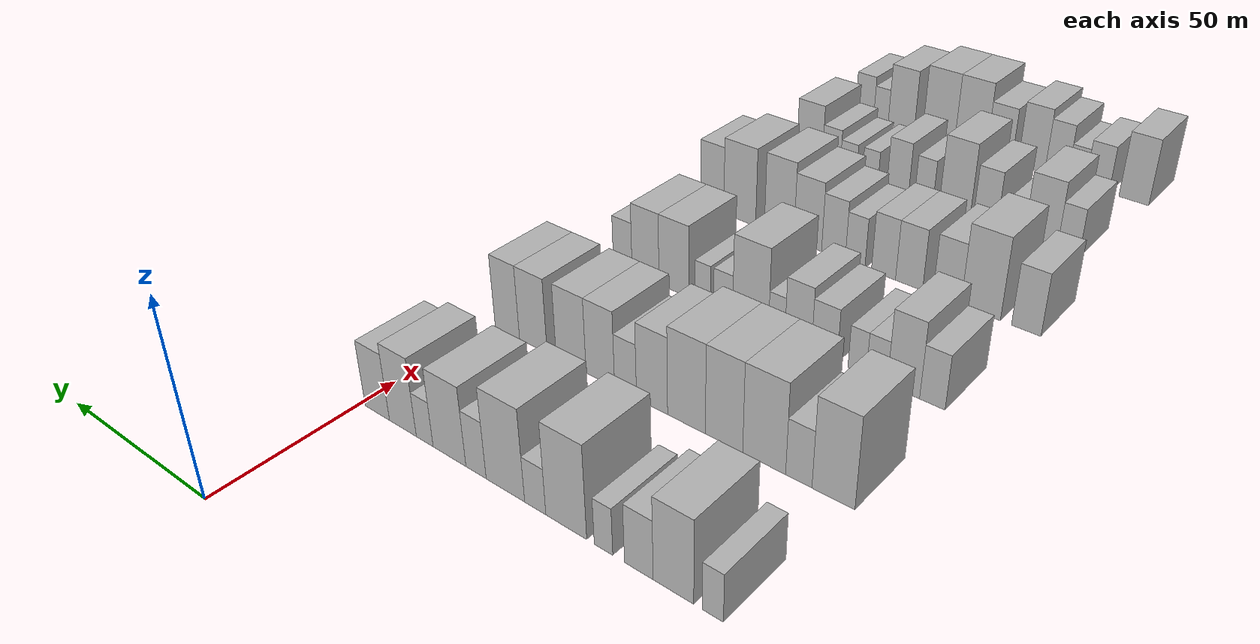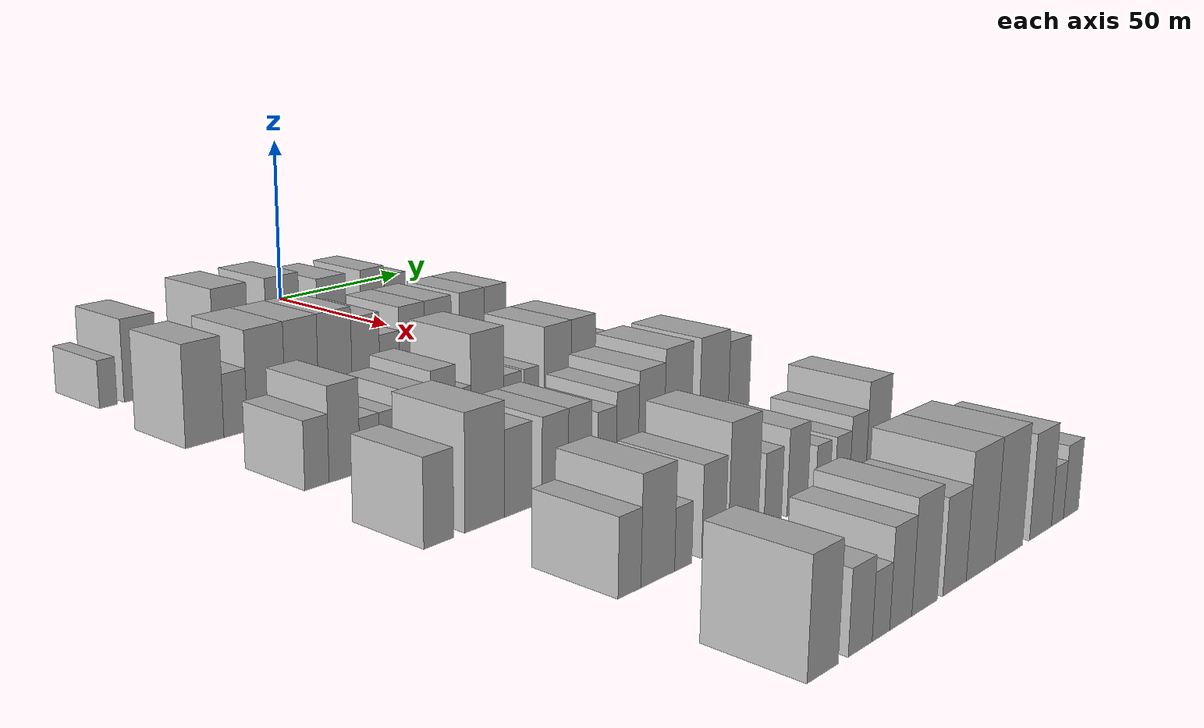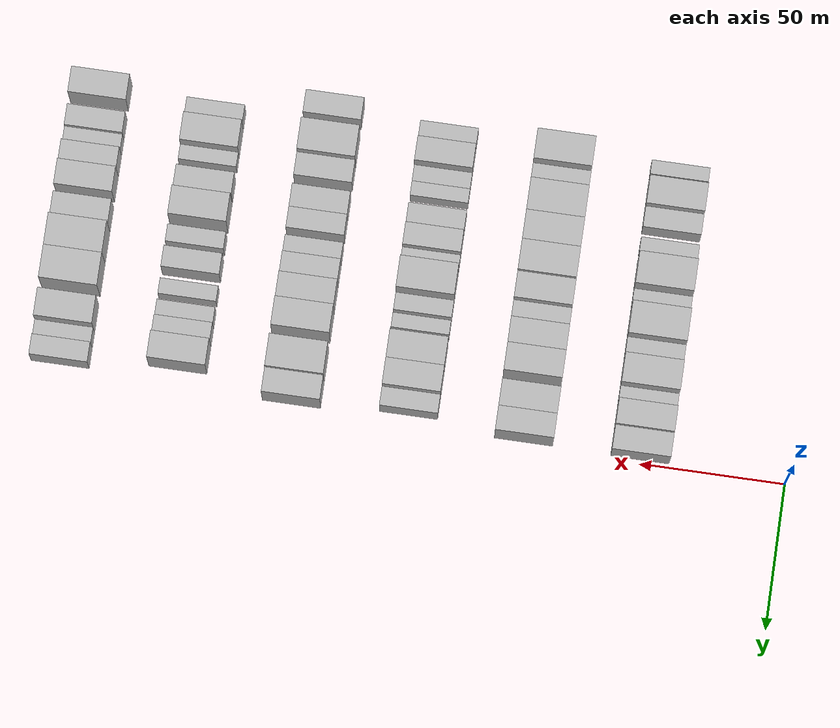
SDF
<sdf version="1.6">
 <world name="default">
  <model name="building_58">
   <static>1</static>
   <pose>50.0000 -100.2945 0 0.000000 0.000000 0.000000</pose>
   <link name="link">
    <pose>0 0 6.00 0 0 0</pose>
    <collision name="collision"><geometry><box><size>20.0000 4.9041 12.0000</size></box></geometry></collision>
    <visual name="visual">
     <cast_shadows>0</cast_shadows>
     <geometry><box><size>20.0000 4.9041 12.0000</size></box></geometry>
     <material>
      <script>
       <uri>model://HANNAS_wall/materials/scripts</uri>
       <uri>model://HANNAS_wall/materials/textures</uri>
       <name>vrc/HANNAS_wall</name>
      </script>
     </material>
    </visual>
   </link>
  </model>
  <model name="building_59">
   <static>1</static>
   <pose>50.0000 -90.9520 0 0.000000 0.000000 0.000000</pose>
   <link name="link">
    <pose>0 0 10.50 0 0 0</pose>
    <collision name="collision"><geometry><box><size>20.0000 9.7809 21.0000</size></box></geometry></collision>
    <visual name="visual">
     <cast_shadows>0</cast_shadows>
     <geometry><box><size>20.0000 9.7809 21.0000</size></box></geometry>
     <material>
      <script>
       <uri>model://HANNAS_wall/materials/scripts</uri>
       <uri>model://HANNAS_wall/materials/textures</uri>
       <name>vrc/HANNAS_wall</name>
      </script>
     </material>
    </visual>
   </link>
  </model>
  <model name="building_60">
   <static>1</static>
   <pose>50.0000 -82.4660 0 0.000000 0.000000 0.000000</pose>
   <link name="link">
    <pose>0 0 7.50 0 0 0</pose>
    <collision name="collision"><geometry><box><size>20.0000 7.1911 15.0000</size></box></geometry></collision>
    <visual name="visual">
     <cast_shadows>0</cast_shadows>
     <geometry><box><size>20.0000 7.1911 15.0000</size></box></geometry>
     <material>
      <script>
       <uri>model://HANNAS_wall/materials/scripts</uri>
       <uri>model://HANNAS_wall/materials/textures</uri>
       <name>vrc/HANNAS_wall</name>
      </script>
     </material>
    </visual>
   </link>
  </model>
  <model name="building_61">
   <static>1</static>
   <pose>50.0000 -73.4531 0 0.000000 0.000000 0.000000</pose>
   <link name="link">
    <pose>0 0 6.00 0 0 0</pose>
    <collision name="collision"><geometry><box><size>20.0000 4.8346 12.0000</size></box></geometry></collision>
    <visual name="visual">
     <cast_shadows>0</cast_shadows>
     <geometry><box><size>20.0000 4.8346 12.0000</size></box></geometry>
     <material>
      <script>
       <uri>model://HANNAS_wall/materials/scripts</uri>
       <uri>model://HANNAS_wall/materials/textures</uri>
       <name>vrc/HANNAS_wall</name>
      </script>
     </material>
    </visual>
   </link>
  </model>
  <model name="building_62">
   <static>1</static>
   <pose>50.0000 -63.4703 0 0.000000 0.000000 0.000000</pose>
   <link name="link">
    <pose>0 0 12.00 0 0 0</pose>
    <collision name="collision"><geometry><box><size>20.0000 11.1311 24.0000</size></box></geometry></collision>
    <visual name="visual">
     <cast_shadows>0</cast_shadows>
     <geometry><box><size>20.0000 11.1311 24.0000</size></box></geometry>
     <material>
      <script>
       <uri>model://HANNAS_wall/materials/scripts</uri>
       <uri>model://HANNAS_wall/materials/textures</uri>
       <name>vrc/HANNAS_wall</name>
      </script>
     </material>
    </visual>
   </link>
  </model>
  <model name="building_63">
   <static>1</static>
   <pose>50.0000 -54.9149 0 0.000000 0.000000 0.000000</pose>
   <link name="link">
    <pose>0 0 6.00 0 0 0</pose>
    <collision name="collision"><geometry><box><size>20.0000 5.9796 12.0000</size></box></geometry></collision>
    <visual name="visual">
     <cast_shadows>0</cast_shadows>
     <geometry><box><size>20.0000 5.9796 12.0000</size></box></geometry>
     <material>
      <script>
       <uri>model://HANNAS_wall/materials/scripts</uri>
       <uri>model://HANNAS_wall/materials/textures</uri>
       <name>vrc/HANNAS_wall</name>
      </script>
     </material>
    </visual>
   </link>
  </model>
  <model name="building_64">
   <static>1</static>
   <pose>50.0000 -46.3006 0 0.000000 0.000000 0.000000</pose>
   <link name="link">
    <pose>0 0 12.00 0 0 0</pose>
    <collision name="collision"><geometry><box><size>20.0000 11.2490 24.0000</size></box></geometry></collision>
    <visual name="visual">
     <cast_shadows>0</cast_shadows>
     <geometry><box><size>20.0000 11.2490 24.0000</size></box></geometry>
     <material>
      <script>
       <uri>model://HANNAS_wall/materials/scripts</uri>
       <uri>model://HANNAS_wall/materials/textures</uri>
       <name>vrc/HANNAS_wall</name>
      </script>
     </material>
    </visual>
   </link>
  </model>
  <model name="building_65">
   <static>1</static>
   <pose>50.0000 -37.6016 0 0.000000 0.000000 0.000000</pose>
   <link name="link">
    <pose>0 0 7.50 0 0 0</pose>
    <collision name="collision"><geometry><box><size>20.0000 6.1490 15.0000</size></box></geometry></collision>
    <visual name="visual">
     <cast_shadows>0</cast_shadows>
     <geometry><box><size>20.0000 6.1490 15.0000</size></box></geometry>
     <material>
      <script>
       <uri>model://HANNAS_wall/materials/scripts</uri>
       <uri>model://HANNAS_wall/materials/textures</uri>
       <name>vrc/HANNAS_wall</name>
      </script>
     </material>
    </visual>
   </link>
  </model>
  <model name="building_66">
   <static>1</static>
   <pose>50.0000 -29.3880 0 0.000000 0.000000 0.000000</pose>
   <link name="link">
    <pose>0 0 10.50 0 0 0</pose>
    <collision name="collision"><geometry><box><size>20.0000 10.2781 21.0000</size></box></geometry></collision>
    <visual name="visual">
     <cast_shadows>0</cast_shadows>
     <geometry><box><size>20.0000 10.2781 21.0000</size></box></geometry>
     <material>
      <script>
       <uri>model://HANNAS_wall/materials/scripts</uri>
       <uri>model://HANNAS_wall/materials/textures</uri>
       <name>vrc/HANNAS_wall</name>
      </script>
     </material>
    </visual>
   </link>
  </model>
  <model name="building_67">
   <static>1</static>
   <pose>50.0000 -21.5326 0 0.000000 0.000000 0.000000</pose>
   <link name="link">
    <pose>0 0 6.00 0 0 0</pose>
    <collision name="collision"><geometry><box><size>20.0000 5.4326 12.0000</size></box></geometry></collision>
    <visual name="visual">
     <cast_shadows>0</cast_shadows>
     <geometry><box><size>20.0000 5.4326 12.0000</size></box></geometry>
     <material>
      <script>
       <uri>model://HANNAS_wall/materials/scripts</uri>
       <uri>model://HANNAS_wall/materials/textures</uri>
       <name>vrc/HANNAS_wall</name>
      </script>
     </material>
    </visual>
   </link>
  </model>
  <model name="building_68">
   <static>1</static>
   <pose>50.0000 -14.3611 0 0.000000 0.000000 0.000000</pose>
   <link name="link">
    <pose>0 0 10.50 0 0 0</pose>
    <collision name="collision"><geometry><box><size>20.0000 8.9104 21.0000</size></box></geometry></collision>
    <visual name="visual">
     <cast_shadows>0</cast_shadows>
     <geometry><box><size>20.0000 8.9104 21.0000</size></box></geometry>
     <material>
      <script>
       <uri>model://HANNAS_wall/materials/scripts</uri>
       <uri>model://HANNAS_wall/materials/textures</uri>
       <name>vrc/HANNAS_wall</name>
      </script>
     </material>
    </visual>
   </link>
  </model>
  <model name="building_69">
   <static>1</static>
   <pose>50.0000 -5.7404 0 0.000000 0.000000 0.000000</pose>
   <link name="link">
    <pose>0 0 9.00 0 0 0</pose>
    <collision name="collision"><geometry><box><size>20.0000 8.3310 18.0000</size></box></geometry></collision>
    <visual name="visual">
     <cast_shadows>0</cast_shadows>
     <geometry><box><size>20.0000 8.3310 18.0000</size></box></geometry>
     <material>
      <script>
       <uri>model://HANNAS_wall/materials/scripts</uri>
       <uri>model://HANNAS_wall/materials/textures</uri>
       <name>vrc/HANNAS_wall</name>
      </script>
     </material>
    </visual>
   </link>
  </model>
  <model name="building_196">
   <static>1</static>
   <pose>90.0000 -100.6691 0 0.000000 0.000000 0.000000</pose>
   <link name="link">
    <pose>0 0 12.00 0 0 0</pose>
    <collision name="collision"><geometry><box><size>20.0000 10.4259 24.0000</size></box></geometry></collision>
    <visual name="visual">
     <cast_shadows>0</cast_shadows>
     <geometry><box><size>20.0000 10.4259 24.0000</size></box></geometry>
     <material>
      <script>
       <uri>model://HANNAS_wall/materials/scripts</uri>
       <uri>model://HANNAS_wall/materials/textures</uri>
       <name>vrc/HANNAS_wall</name>
      </script>
     </material>
    </visual>
   </link>
  </model>
  <model name="building_197">
   <static>1</static>
   <pose>90.0000 -92.1511 0 0.000000 0.000000 0.000000</pose>
   <link name="link">
    <pose>0 0 7.50 0 0 0</pose>
    <collision name="collision"><geometry><box><size>20.0000 6.6101 15.0000</size></box></geometry></collision>
    <visual name="visual">
     <cast_shadows>0</cast_shadows>
     <geometry><box><size>20.0000 6.6101 15.0000</size></box></geometry>
     <material>
      <script>
       <uri>model://HANNAS_wall/materials/scripts</uri>
       <uri>model://HANNAS_wall/materials/textures</uri>
       <name>vrc/HANNAS_wall</name>
      </script>
     </material>
    </visual>
   </link>
  </model>
  <model name="building_198">
   <static>1</static>
   <pose>90.0000 -83.2589 0 0.000000 0.000000 0.000000</pose>
   <link name="link">
    <pose>0 0 12.00 0 0 0</pose>
    <collision name="collision"><geometry><box><size>20.0000 11.1741 24.0000</size></box></geometry></collision>
    <visual name="visual">
     <cast_shadows>0</cast_shadows>
     <geometry><box><size>20.0000 11.1741 24.0000</size></box></geometry>
     <material>
      <script>
       <uri>model://HANNAS_wall/materials/scripts</uri>
       <uri>model://HANNAS_wall/materials/textures</uri>
       <name>vrc/HANNAS_wall</name>
      </script>
     </material>
    </visual>
   </link>
  </model>
  <model name="building_199">
   <static>1</static>
   <pose>90.0000 -72.6114 0 0.000000 0.000000 0.000000</pose>
   <link name="link">
    <pose>0 0 12.00 0 0 0</pose>
    <collision name="collision"><geometry><box><size>20.0000 10.1210 24.0000</size></box></geometry></collision>
    <visual name="visual">
     <cast_shadows>0</cast_shadows>
     <geometry><box><size>20.0000 10.1210 24.0000</size></box></geometry>
     <material>
      <script>
       <uri>model://HANNAS_wall/materials/scripts</uri>
       <uri>model://HANNAS_wall/materials/textures</uri>
       <name>vrc/HANNAS_wall</name>
      </script>
     </material>
    </visual>
   </link>
  </model>
  <model name="building_200">
   <static>1</static>
   <pose>90.0000 -62.2204 0 0.000000 0.000000 0.000000</pose>
   <link name="link">
    <pose>0 0 12.00 0 0 0</pose>
    <collision name="collision"><geometry><box><size>20.0000 10.6608 24.0000</size></box></geometry></collision>
    <visual name="visual">
     <cast_shadows>0</cast_shadows>
     <geometry><box><size>20.0000 10.6608 24.0000</size></box></geometry>
     <material>
      <script>
       <uri>model://HANNAS_wall/materials/scripts</uri>
       <uri>model://HANNAS_wall/materials/textures</uri>
       <name>vrc/HANNAS_wall</name>
      </script>
     </material>
    </visual>
   </link>
  </model>
  <model name="building_201">
   <static>1</static>
   <pose>90.0000 -52.3362 0 0.000000 0.000000 0.000000</pose>
   <link name="link">
    <pose>0 0 10.50 0 0 0</pose>
    <collision name="collision"><geometry><box><size>20.0000 9.1076 21.0000</size></box></geometry></collision>
    <visual name="visual">
     <cast_shadows>0</cast_shadows>
     <geometry><box><size>20.0000 9.1076 21.0000</size></box></geometry>
     <material>
      <script>
       <uri>model://HANNAS_wall/materials/scripts</uri>
       <uri>model://HANNAS_wall/materials/textures</uri>
       <name>vrc/HANNAS_wall</name>
      </script>
     </material>
    </visual>
   </link>
  </model>
  <model name="building_202">
   <static>1</static>
   <pose>90.0000 -44.4828 0 0.000000 0.000000 0.000000</pose>
   <link name="link">
    <pose>0 0 7.50 0 0 0</pose>
    <collision name="collision"><geometry><box><size>20.0000 6.5993 15.0000</size></box></geometry></collision>
    <visual name="visual">
     <cast_shadows>0</cast_shadows>
     <geometry><box><size>20.0000 6.5993 15.0000</size></box></geometry>
     <material>
      <script>
       <uri>model://HANNAS_wall/materials/scripts</uri>
       <uri>model://HANNAS_wall/materials/textures</uri>
       <name>vrc/HANNAS_wall</name>
      </script>
     </material>
    </visual>
   </link>
  </model>
  <model name="building_203">
   <static>1</static>
   <pose>90.0000 -36.7470 0 0.000000 0.000000 0.000000</pose>
   <link name="link">
    <pose>0 0 10.50 0 0 0</pose>
    <collision name="collision"><geometry><box><size>20.0000 8.8722 21.0000</size></box></geometry></collision>
    <visual name="visual">
     <cast_shadows>0</cast_shadows>
     <geometry><box><size>20.0000 8.8722 21.0000</size></box></geometry>
     <material>
      <script>
       <uri>model://HANNAS_wall/materials/scripts</uri>
       <uri>model://HANNAS_wall/materials/textures</uri>
       <name>vrc/HANNAS_wall</name>
      </script>
     </material>
    </visual>
   </link>
  </model>
  <model name="building_204">
   <static>1</static>
   <pose>90.0000 -27.5056 0 0.000000 0.000000 0.000000</pose>
   <link name="link">
    <pose>0 0 10.50 0 0 0</pose>
    <collision name="collision"><geometry><box><size>20.0000 9.6107 21.0000</size></box></geometry></collision>
    <visual name="visual">
     <cast_shadows>0</cast_shadows>
     <geometry><box><size>20.0000 9.6107 21.0000</size></box></geometry>
     <material>
      <script>
       <uri>model://HANNAS_wall/materials/scripts</uri>
       <uri>model://HANNAS_wall/materials/textures</uri>
       <name>vrc/HANNAS_wall</name>
      </script>
     </material>
    </visual>
   </link>
  </model>
  <model name="building_205">
   <static>1</static>
   <pose>90.0000 -15.0714 0 0.000000 0.000000 0.000000</pose>
   <link name="link">
    <pose>0 0 10.50 0 0 0</pose>
    <collision name="collision"><geometry><box><size>20.0000 9.2577 21.0000</size></box></geometry></collision>
    <visual name="visual">
     <cast_shadows>0</cast_shadows>
     <geometry><box><size>20.0000 9.2577 21.0000</size></box></geometry>
     <material>
      <script>
       <uri>model://HANNAS_wall/materials/scripts</uri>
       <uri>model://HANNAS_wall/materials/textures</uri>
       <name>vrc/HANNAS_wall</name>
      </script>
     </material>
    </visual>
   </link>
  </model>
  <model name="building_206">
   <static>1</static>
   <pose>90.0000 -6.2385 0 0.000000 0.000000 0.000000</pose>
   <link name="link">
    <pose>0 0 10.50 0 0 0</pose>
    <collision name="collision"><geometry><box><size>20.0000 8.4080 21.0000</size></box></geometry></collision>
    <visual name="visual">
     <cast_shadows>0</cast_shadows>
     <geometry><box><size>20.0000 8.4080 21.0000</size></box></geometry>
     <material>
      <script>
       <uri>model://HANNAS_wall/materials/scripts</uri>
       <uri>model://HANNAS_wall/materials/textures</uri>
       <name>vrc/HANNAS_wall</name>
      </script>
     </material>
    </visual>
   </link>
  </model>
  <model name="building_327">
   <static>1</static>
   <pose>130.0000 -101.3605 0 0.000000 0.000000 0.000000</pose>
   <link name="link">
    <pose>0 0 7.50 0 0 0</pose>
    <collision name="collision"><geometry><box><size>20.0000 6.5066 15.0000</size></box></geometry></collision>
    <visual name="visual">
     <cast_shadows>0</cast_shadows>
     <geometry><box><size>20.0000 6.5066 15.0000</size></box></geometry>
     <material>
      <script>
       <uri>model://HANNAS_wall/materials/scripts</uri>
       <uri>model://HANNAS_wall/materials/textures</uri>
       <name>vrc/HANNAS_wall</name>
      </script>
     </material>
    </visual>
   </link>
  </model>
  <model name="building_328">
   <static>1</static>
   <pose>130.0000 -93.8606 0 0.000000 0.000000 0.000000</pose>
   <link name="link">
    <pose>0 0 10.50 0 0 0</pose>
    <collision name="collision"><geometry><box><size>20.0000 8.4932 21.0000</size></box></geometry></collision>
    <visual name="visual">
     <cast_shadows>0</cast_shadows>
     <geometry><box><size>20.0000 8.4932 21.0000</size></box></geometry>
     <material>
      <script>
       <uri>model://HANNAS_wall/materials/scripts</uri>
       <uri>model://HANNAS_wall/materials/textures</uri>
       <name>vrc/HANNAS_wall</name>
      </script>
     </material>
    </visual>
   </link>
  </model>
  <model name="building_329">
   <static>1</static>
   <pose>130.0000 -86.8076 0 0.000000 0.000000 0.000000</pose>
   <link name="link">
    <pose>0 0 6.00 0 0 0</pose>
    <collision name="collision"><geometry><box><size>20.0000 5.6128 12.0000</size></box></geometry></collision>
    <visual name="visual">
     <cast_shadows>0</cast_shadows>
     <geometry><box><size>20.0000 5.6128 12.0000</size></box></geometry>
     <material>
      <script>
       <uri>model://HANNAS_wall/materials/scripts</uri>
       <uri>model://HANNAS_wall/materials/textures</uri>
       <name>vrc/HANNAS_wall</name>
      </script>
     </material>
    </visual>
   </link>
  </model>
  <model name="building_330">
   <static>1</static>
   <pose>130.0000 -81.4940 0 0.000000 0.000000 0.000000</pose>
   <link name="link">
    <pose>0 0 6.00 0 0 0</pose>
    <collision name="collision"><geometry><box><size>20.0000 5.0144 12.0000</size></box></geometry></collision>
    <visual name="visual">
     <cast_shadows>0</cast_shadows>
     <geometry><box><size>20.0000 5.0144 12.0000</size></box></geometry>
     <material>
      <script>
       <uri>model://HANNAS_wall/materials/scripts</uri>
       <uri>model://HANNAS_wall/materials/textures</uri>
       <name>vrc/HANNAS_wall</name>
      </script>
     </material>
    </visual>
   </link>
  </model>
  <model name="building_331">
   <static>1</static>
   <pose>130.0000 -72.3446 0 0.000000 0.000000 0.000000</pose>
   <link name="link">
    <pose>0 0 7.50 0 0 0</pose>
    <collision name="collision"><geometry><box><size>20.0000 7.2845 15.0000</size></box></geometry></collision>
    <visual name="visual">
     <cast_shadows>0</cast_shadows>
     <geometry><box><size>20.0000 7.2845 15.0000</size></box></geometry>
     <material>
      <script>
       <uri>model://HANNAS_wall/materials/scripts</uri>
       <uri>model://HANNAS_wall/materials/textures</uri>
       <name>vrc/HANNAS_wall</name>
      </script>
     </material>
    </visual>
   </link>
  </model>
  <model name="building_332">
   <static>1</static>
   <pose>130.0000 -64.8132 0 0.000000 0.000000 0.000000</pose>
   <link name="link">
    <pose>0 0 9.00 0 0 0</pose>
    <collision name="collision"><geometry><box><size>20.0000 7.7782 18.0000</size></box></geometry></collision>
    <visual name="visual">
     <cast_shadows>0</cast_shadows>
     <geometry><box><size>20.0000 7.7782 18.0000</size></box></geometry>
     <material>
      <script>
       <uri>model://HANNAS_wall/materials/scripts</uri>
       <uri>model://HANNAS_wall/materials/textures</uri>
       <name>vrc/HANNAS_wall</name>
      </script>
     </material>
    </visual>
   </link>
  </model>
  <model name="building_333">
   <static>1</static>
   <pose>130.0000 -58.4968 0 0.000000 0.000000 0.000000</pose>
   <link name="link">
    <pose>0 0 6.00 0 0 0</pose>
    <collision name="collision"><geometry><box><size>20.0000 4.8547 12.0000</size></box></geometry></collision>
    <visual name="visual">
     <cast_shadows>0</cast_shadows>
     <geometry><box><size>20.0000 4.8547 12.0000</size></box></geometry>
     <material>
      <script>
       <uri>model://HANNAS_wall/materials/scripts</uri>
       <uri>model://HANNAS_wall/materials/textures</uri>
       <name>vrc/HANNAS_wall</name>
      </script>
     </material>
    </visual>
   </link>
  </model>
  <model name="building_334">
   <static>1</static>
   <pose>130.0000 -50.6088 0 0.000000 0.000000 0.000000</pose>
   <link name="link">
    <pose>0 0 12.00 0 0 0</pose>
    <collision name="collision"><geometry><box><size>20.0000 10.9212 24.0000</size></box></geometry></collision>
    <visual name="visual">
     <cast_shadows>0</cast_shadows>
     <geometry><box><size>20.0000 10.9212 24.0000</size></box></geometry>
     <material>
      <script>
       <uri>model://HANNAS_wall/materials/scripts</uri>
       <uri>model://HANNAS_wall/materials/textures</uri>
       <name>vrc/HANNAS_wall</name>
      </script>
     </material>
    </visual>
   </link>
  </model>
  <model name="building_335">
   <static>1</static>
   <pose>130.0000 -42.1603 0 0.000000 0.000000 0.000000</pose>
   <link name="link">
    <pose>0 0 6.00 0 0 0</pose>
    <collision name="collision"><geometry><box><size>20.0000 5.9759 12.0000</size></box></geometry></collision>
    <visual name="visual">
     <cast_shadows>0</cast_shadows>
     <geometry><box><size>20.0000 5.9759 12.0000</size></box></geometry>
     <material>
      <script>
       <uri>model://HANNAS_wall/materials/scripts</uri>
       <uri>model://HANNAS_wall/materials/textures</uri>
       <name>vrc/HANNAS_wall</name>
      </script>
     </material>
    </visual>
   </link>
  </model>
  <model name="building_336">
   <static>1</static>
   <pose>130.0000 -35.6440 0 0.000000 0.000000 0.000000</pose>
   <link name="link">
    <pose>0 0 6.00 0 0 0</pose>
    <collision name="collision"><geometry><box><size>20.0000 5.0566 12.0000</size></box></geometry></collision>
    <visual name="visual">
     <cast_shadows>0</cast_shadows>
     <geometry><box><size>20.0000 5.0566 12.0000</size></box></geometry>
     <material>
      <script>
       <uri>model://HANNAS_wall/materials/scripts</uri>
       <uri>model://HANNAS_wall/materials/textures</uri>
       <name>vrc/HANNAS_wall</name>
      </script>
     </material>
    </visual>
   </link>
  </model>
  <model name="building_337">
   <static>1</static>
   <pose>130.0000 -26.2143 0 0.000000 0.000000 0.000000</pose>
   <link name="link">
    <pose>0 0 10.50 0 0 0</pose>
    <collision name="collision"><geometry><box><size>20.0000 9.8029 21.0000</size></box></geometry></collision>
    <visual name="visual">
     <cast_shadows>0</cast_shadows>
     <geometry><box><size>20.0000 9.8029 21.0000</size></box></geometry>
     <material>
      <script>
       <uri>model://HANNAS_wall/materials/scripts</uri>
       <uri>model://HANNAS_wall/materials/textures</uri>
       <name>vrc/HANNAS_wall</name>
      </script>
     </material>
    </visual>
   </link>
  </model>
  <model name="building_338">
   <static>1</static>
   <pose>130.0000 -16.7112 0 0.000000 0.000000 0.000000</pose>
   <link name="link">
    <pose>0 0 10.50 0 0 0</pose>
    <collision name="collision"><geometry><box><size>20.0000 9.2034 21.0000</size></box></geometry></collision>
    <visual name="visual">
     <cast_shadows>0</cast_shadows>
     <geometry><box><size>20.0000 9.2034 21.0000</size></box></geometry>
     <material>
      <script>
       <uri>model://HANNAS_wall/materials/scripts</uri>
       <uri>model://HANNAS_wall/materials/textures</uri>
       <name>vrc/HANNAS_wall</name>
      </script>
     </material>
    </visual>
   </link>
  </model>
  <model name="building_339">
   <static>1</static>
   <pose>130.0000 -8.8415 0 0.000000 0.000000 0.000000</pose>
   <link name="link">
    <pose>0 0 7.50 0 0 0</pose>
    <collision name="collision"><geometry><box><size>20.0000 6.5360 15.0000</size></box></geometry></collision>
    <visual name="visual">
     <cast_shadows>0</cast_shadows>
     <geometry><box><size>20.0000 6.5360 15.0000</size></box></geometry>
     <material>
      <script>
       <uri>model://HANNAS_wall/materials/scripts</uri>
       <uri>model://HANNAS_wall/materials/textures</uri>
       <name>vrc/HANNAS_wall</name>
      </script>
     </material>
    </visual>
   </link>
  </model>
  <model name="building_472">
   <static>1</static>
   <pose>170.0000 -105.1812 0 0.000000 0.000000 0.000000</pose>
   <link name="link">
    <pose>0 0 9.00 0 0 0</pose>
    <collision name="collision"><geometry><box><size>20.0000 7.8254 18.0000</size></box></geometry></collision>
    <visual name="visual">
     <cast_shadows>0</cast_shadows>
     <geometry><box><size>20.0000 7.8254 18.0000</size></box></geometry>
     <material>
      <script>
       <uri>model://HANNAS_wall/materials/scripts</uri>
       <uri>model://HANNAS_wall/materials/textures</uri>
       <name>vrc/HANNAS_wall</name>
      </script>
     </material>
    </visual>
   </link>
  </model>
  <model name="building_473">
   <static>1</static>
   <pose>170.0000 -92.7894 0 0.000000 0.000000 0.000000</pose>
   <link name="link">
    <pose>0 0 12.00 0 0 0</pose>
    <collision name="collision"><geometry><box><size>20.0000 10.9582 24.0000</size></box></geometry></collision>
    <visual name="visual">
     <cast_shadows>0</cast_shadows>
     <geometry><box><size>20.0000 10.9582 24.0000</size></box></geometry>
     <material>
      <script>
       <uri>model://HANNAS_wall/materials/scripts</uri>
       <uri>model://HANNAS_wall/materials/textures</uri>
       <name>vrc/HANNAS_wall</name>
      </script>
     </material>
    </visual>
   </link>
  </model>
  <model name="building_474">
   <static>1</static>
   <pose>170.0000 -83.3353 0 0.000000 0.000000 0.000000</pose>
   <link name="link">
    <pose>0 0 9.00 0 0 0</pose>
    <collision name="collision"><geometry><box><size>20.0000 7.9500 18.0000</size></box></geometry></collision>
    <visual name="visual">
     <cast_shadows>0</cast_shadows>
     <geometry><box><size>20.0000 7.9500 18.0000</size></box></geometry>
     <material>
      <script>
       <uri>model://HANNAS_wall/materials/scripts</uri>
       <uri>model://HANNAS_wall/materials/textures</uri>
       <name>vrc/HANNAS_wall</name>
      </script>
     </material>
    </visual>
   </link>
  </model>
  <model name="building_475">
   <static>1</static>
   <pose>170.0000 -72.3534 0 0.000000 0.000000 0.000000</pose>
   <link name="link">
    <pose>0 0 9.00 0 0 0</pose>
    <collision name="collision"><geometry><box><size>20.0000 8.0140 18.0000</size></box></geometry></collision>
    <visual name="visual">
     <cast_shadows>0</cast_shadows>
     <geometry><box><size>20.0000 8.0140 18.0000</size></box></geometry>
     <material>
      <script>
       <uri>model://HANNAS_wall/materials/scripts</uri>
       <uri>model://HANNAS_wall/materials/textures</uri>
       <name>vrc/HANNAS_wall</name>
      </script>
     </material>
    </visual>
   </link>
  </model>
  <model name="building_476">
   <static>1</static>
   <pose>170.0000 -64.6950 0 0.000000 0.000000 0.000000</pose>
   <link name="link">
    <pose>0 0 9.00 0 0 0</pose>
    <collision name="collision"><geometry><box><size>20.0000 7.3029 18.0000</size></box></geometry></collision>
    <visual name="visual">
     <cast_shadows>0</cast_shadows>
     <geometry><box><size>20.0000 7.3029 18.0000</size></box></geometry>
     <material>
      <script>
       <uri>model://HANNAS_wall/materials/scripts</uri>
       <uri>model://HANNAS_wall/materials/textures</uri>
       <name>vrc/HANNAS_wall</name>
      </script>
     </material>
    </visual>
   </link>
  </model>
  <model name="building_477">
   <static>1</static>
   <pose>170.0000 -55.9696 0 0.000000 0.000000 0.000000</pose>
   <link name="link">
    <pose>0 0 7.50 0 0 0</pose>
    <collision name="collision"><geometry><box><size>20.0000 6.1479 15.0000</size></box></geometry></collision>
    <visual name="visual">
     <cast_shadows>0</cast_shadows>
     <geometry><box><size>20.0000 6.1479 15.0000</size></box></geometry>
     <material>
      <script>
       <uri>model://HANNAS_wall/materials/scripts</uri>
       <uri>model://HANNAS_wall/materials/textures</uri>
       <name>vrc/HANNAS_wall</name>
      </script>
     </material>
    </visual>
   </link>
  </model>
  <model name="building_478">
   <static>1</static>
   <pose>170.0000 -49.1253 0 0.000000 0.000000 0.000000</pose>
   <link name="link">
    <pose>0 0 9.00 0 0 0</pose>
    <collision name="collision"><geometry><box><size>20.0000 7.5407 18.0000</size></box></geometry></collision>
    <visual name="visual">
     <cast_shadows>0</cast_shadows>
     <geometry><box><size>20.0000 7.5407 18.0000</size></box></geometry>
     <material>
      <script>
       <uri>model://HANNAS_wall/materials/scripts</uri>
       <uri>model://HANNAS_wall/materials/textures</uri>
       <name>vrc/HANNAS_wall</name>
      </script>
     </material>
    </visual>
   </link>
  </model>
  <model name="building_479">
   <static>1</static>
   <pose>170.0000 -40.8050 0 0.000000 0.000000 0.000000</pose>
   <link name="link">
    <pose>0 0 10.50 0 0 0</pose>
    <collision name="collision"><geometry><box><size>20.0000 9.0998 21.0000</size></box></geometry></collision>
    <visual name="visual">
     <cast_shadows>0</cast_shadows>
     <geometry><box><size>20.0000 9.0998 21.0000</size></box></geometry>
     <material>
      <script>
       <uri>model://HANNAS_wall/materials/scripts</uri>
       <uri>model://HANNAS_wall/materials/textures</uri>
       <name>vrc/HANNAS_wall</name>
      </script>
     </material>
    </visual>
   </link>
  </model>
  <model name="building_480">
   <static>1</static>
   <pose>170.0000 -31.2953 0 0.000000 0.000000 0.000000</pose>
   <link name="link">
    <pose>0 0 12.00 0 0 0</pose>
    <collision name="collision"><geometry><box><size>20.0000 9.9196 24.0000</size></box></geometry></collision>
    <visual name="visual">
     <cast_shadows>0</cast_shadows>
     <geometry><box><size>20.0000 9.9196 24.0000</size></box></geometry>
     <material>
      <script>
       <uri>model://HANNAS_wall/materials/scripts</uri>
       <uri>model://HANNAS_wall/materials/textures</uri>
       <name>vrc/HANNAS_wall</name>
      </script>
     </material>
    </visual>
   </link>
  </model>
  <model name="building_481">
   <static>1</static>
   <pose>170.0000 -17.7468 0 0.000000 0.000000 0.000000</pose>
   <link name="link">
    <pose>0 0 12.00 0 0 0</pose>
    <collision name="collision"><geometry><box><size>20.0000 11.1773 24.0000</size></box></geometry></collision>
    <visual name="visual">
     <cast_shadows>0</cast_shadows>
     <geometry><box><size>20.0000 11.1773 24.0000</size></box></geometry>
     <material>
      <script>
       <uri>model://HANNAS_wall/materials/scripts</uri>
       <uri>model://HANNAS_wall/materials/textures</uri>
       <name>vrc/HANNAS_wall</name>
      </script>
     </material>
    </visual>
   </link>
  </model>
  <model name="building_482">
   <static>1</static>
   <pose>170.0000 -7.9491 0 0.000000 0.000000 0.000000</pose>
   <link name="link">
    <pose>0 0 10.50 0 0 0</pose>
    <collision name="collision"><geometry><box><size>20.0000 8.4181 21.0000</size></box></geometry></collision>
    <visual name="visual">
     <cast_shadows>0</cast_shadows>
     <geometry><box><size>20.0000 8.4181 21.0000</size></box></geometry>
     <material>
      <script>
       <uri>model://HANNAS_wall/materials/scripts</uri>
       <uri>model://HANNAS_wall/materials/textures</uri>
       <name>vrc/HANNAS_wall</name>
      </script>
     </material>
    </visual>
   </link>
  </model>
  <model name="building_606">
   <static>1</static>
   <pose>210.0000 -98.2242 0 0.000000 0.000000 0.000000</pose>
   <link name="link">
    <pose>0 0 7.50 0 0 0</pose>
    <collision name="collision"><geometry><box><size>20.0000 6.3174 15.0000</size></box></geometry></collision>
    <visual name="visual">
     <cast_shadows>0</cast_shadows>
     <geometry><box><size>20.0000 6.3174 15.0000</size></box></geometry>
     <material>
      <script>
       <uri>model://HANNAS_wall/materials/scripts</uri>
       <uri>model://HANNAS_wall/materials/textures</uri>
       <name>vrc/HANNAS_wall</name>
      </script>
     </material>
    </visual>
   </link>
  </model>
  <model name="building_607">
   <static>1</static>
   <pose>210.0000 -90.2207 0 0.000000 0.000000 0.000000</pose>
   <link name="link">
    <pose>0 0 10.50 0 0 0</pose>
    <collision name="collision"><geometry><box><size>20.0000 9.6896 21.0000</size></box></geometry></collision>
    <visual name="visual">
     <cast_shadows>0</cast_shadows>
     <geometry><box><size>20.0000 9.6896 21.0000</size></box></geometry>
     <material>
      <script>
       <uri>model://HANNAS_wall/materials/scripts</uri>
       <uri>model://HANNAS_wall/materials/textures</uri>
       <name>vrc/HANNAS_wall</name>
      </script>
     </material>
    </visual>
   </link>
  </model>
  <model name="building_608">
   <static>1</static>
   <pose>210.0000 -82.8232 0 0.000000 0.000000 0.000000</pose>
   <link name="link">
    <pose>0 0 6.00 0 0 0</pose>
    <collision name="collision"><geometry><box><size>20.0000 5.1055 12.0000</size></box></geometry></collision>
    <visual name="visual">
     <cast_shadows>0</cast_shadows>
     <geometry><box><size>20.0000 5.1055 12.0000</size></box></geometry>
     <material>
      <script>
       <uri>model://HANNAS_wall/materials/scripts</uri>
       <uri>model://HANNAS_wall/materials/textures</uri>
       <name>vrc/HANNAS_wall</name>
      </script>
     </material>
    </visual>
   </link>
  </model>
  <model name="building_609">
   <static>1</static>
   <pose>210.0000 -73.5877 0 0.000000 0.000000 0.000000</pose>
   <link name="link">
    <pose>0 0 9.00 0 0 0</pose>
    <collision name="collision"><geometry><box><size>20.0000 7.3655 18.0000</size></box></geometry></collision>
    <visual name="visual">
     <cast_shadows>0</cast_shadows>
     <geometry><box><size>20.0000 7.3655 18.0000</size></box></geometry>
     <material>
      <script>
       <uri>model://HANNAS_wall/materials/scripts</uri>
       <uri>model://HANNAS_wall/materials/textures</uri>
       <name>vrc/HANNAS_wall</name>
      </script>
     </material>
    </visual>
   </link>
  </model>
  <model name="building_610">
   <static>1</static>
   <pose>210.0000 -63.9925 0 0.000000 0.000000 0.000000</pose>
   <link name="link">
    <pose>0 0 12.00 0 0 0</pose>
    <collision name="collision"><geometry><box><size>20.0000 9.8249 24.0000</size></box></geometry></collision>
    <visual name="visual">
     <cast_shadows>0</cast_shadows>
     <geometry><box><size>20.0000 9.8249 24.0000</size></box></geometry>
     <material>
      <script>
       <uri>model://HANNAS_wall/materials/scripts</uri>
       <uri>model://HANNAS_wall/materials/textures</uri>
       <name>vrc/HANNAS_wall</name>
      </script>
     </material>
    </visual>
   </link>
  </model>
  <model name="building_611">
   <static>1</static>
   <pose>210.0000 -54.0734 0 0.000000 0.000000 0.000000</pose>
   <link name="link">
    <pose>0 0 7.50 0 0 0</pose>
    <collision name="collision"><geometry><box><size>20.0000 6.0133 15.0000</size></box></geometry></collision>
    <visual name="visual">
     <cast_shadows>0</cast_shadows>
     <geometry><box><size>20.0000 6.0133 15.0000</size></box></geometry>
     <material>
      <script>
       <uri>model://HANNAS_wall/materials/scripts</uri>
       <uri>model://HANNAS_wall/materials/textures</uri>
       <name>vrc/HANNAS_wall</name>
      </script>
     </material>
    </visual>
   </link>
  </model>
  <model name="building_612">
   <static>1</static>
   <pose>210.0000 -45.4210 0 0.000000 0.000000 0.000000</pose>
   <link name="link">
    <pose>0 0 9.00 0 0 0</pose>
    <collision name="collision"><geometry><box><size>20.0000 7.2916 18.0000</size></box></geometry></collision>
    <visual name="visual">
     <cast_shadows>0</cast_shadows>
     <geometry><box><size>20.0000 7.2916 18.0000</size></box></geometry>
     <material>
      <script>
       <uri>model://HANNAS_wall/materials/scripts</uri>
       <uri>model://HANNAS_wall/materials/textures</uri>
       <name>vrc/HANNAS_wall</name>
      </script>
     </material>
    </visual>
   </link>
  </model>
  <model name="building_613">
   <static>1</static>
   <pose>210.0000 -36.0711 0 0.000000 0.000000 0.000000</pose>
   <link name="link">
    <pose>0 0 6.00 0 0 0</pose>
    <collision name="collision"><geometry><box><size>20.0000 5.4081 12.0000</size></box></geometry></collision>
    <visual name="visual">
     <cast_shadows>0</cast_shadows>
     <geometry><box><size>20.0000 5.4081 12.0000</size></box></geometry>
     <material>
      <script>
       <uri>model://HANNAS_wall/materials/scripts</uri>
       <uri>model://HANNAS_wall/materials/textures</uri>
       <name>vrc/HANNAS_wall</name>
      </script>
     </material>
    </visual>
   </link>
  </model>
  <model name="building_614">
   <static>1</static>
   <pose>210.0000 -28.4778 0 0.000000 0.000000 0.000000</pose>
   <link name="link">
    <pose>0 0 6.00 0 0 0</pose>
    <collision name="collision"><geometry><box><size>20.0000 5.7786 12.0000</size></box></geometry></collision>
    <visual name="visual">
     <cast_shadows>0</cast_shadows>
     <geometry><box><size>20.0000 5.7786 12.0000</size></box></geometry>
     <material>
      <script>
       <uri>model://HANNAS_wall/materials/scripts</uri>
       <uri>model://HANNAS_wall/materials/textures</uri>
       <name>vrc/HANNAS_wall</name>
      </script>
     </material>
    </visual>
   </link>
  </model>
  <model name="building_615">
   <static>1</static>
   <pose>210.0000 -22.3781 0 0.000000 0.000000 0.000000</pose>
   <link name="link">
    <pose>0 0 7.50 0 0 0</pose>
    <collision name="collision"><geometry><box><size>20.0000 6.4207 15.0000</size></box></geometry></collision>
    <visual name="visual">
     <cast_shadows>0</cast_shadows>
     <geometry><box><size>20.0000 6.4207 15.0000</size></box></geometry>
     <material>
      <script>
       <uri>model://HANNAS_wall/materials/scripts</uri>
       <uri>model://HANNAS_wall/materials/textures</uri>
       <name>vrc/HANNAS_wall</name>
      </script>
     </material>
    </visual>
   </link>
  </model>
  <model name="building_616">
   <static>1</static>
   <pose>210.0000 -14.5320 0 0.000000 0.000000 0.000000</pose>
   <link name="link">
    <pose>0 0 10.50 0 0 0</pose>
    <collision name="collision"><geometry><box><size>20.0000 9.2715 21.0000</size></box></geometry></collision>
    <visual name="visual">
     <cast_shadows>0</cast_shadows>
     <geometry><box><size>20.0000 9.2715 21.0000</size></box></geometry>
     <material>
      <script>
       <uri>model://HANNAS_wall/materials/scripts</uri>
       <uri>model://HANNAS_wall/materials/textures</uri>
       <name>vrc/HANNAS_wall</name>
      </script>
     </material>
    </visual>
   </link>
  </model>
  <model name="building_743">
   <static>1</static>
   <pose>250.0000 -100.7794 0 0.000000 0.000000 0.000000</pose>
   <link name="link">
    <pose>0 0 10.50 0 0 0</pose>
    <collision name="collision"><geometry><box><size>20.0000 8.9180 21.0000</size></box></geometry></collision>
    <visual name="visual">
     <cast_shadows>0</cast_shadows>
     <geometry><box><size>20.0000 8.9180 21.0000</size></box></geometry>
     <material>
      <script>
       <uri>model://HANNAS_wall/materials/scripts</uri>
       <uri>model://HANNAS_wall/materials/textures</uri>
       <name>vrc/HANNAS_wall</name>
      </script>
     </material>
    </visual>
   </link>
  </model>
  <model name="building_744">
   <static>1</static>
   <pose>250.0000 -89.6566 0 0.000000 0.000000 0.000000</pose>
   <link name="link">
    <pose>0 0 7.50 0 0 0</pose>
    <collision name="collision"><geometry><box><size>20.0000 7.3276 15.0000</size></box></geometry></collision>
    <visual name="visual">
     <cast_shadows>0</cast_shadows>
     <geometry><box><size>20.0000 7.3276 15.0000</size></box></geometry>
     <material>
      <script>
       <uri>model://HANNAS_wall/materials/scripts</uri>
       <uri>model://HANNAS_wall/materials/textures</uri>
       <name>vrc/HANNAS_wall</name>
      </script>
     </material>
    </visual>
   </link>
  </model>
  <model name="building_745">
   <static>1</static>
   <pose>250.0000 -83.2037 0 0.000000 0.000000 0.000000</pose>
   <link name="link">
    <pose>0 0 6.00 0 0 0</pose>
    <collision name="collision"><geometry><box><size>20.0000 5.5781 12.0000</size></box></geometry></collision>
    <visual name="visual">
     <cast_shadows>0</cast_shadows>
     <geometry><box><size>20.0000 5.5781 12.0000</size></box></geometry>
     <material>
      <script>
       <uri>model://HANNAS_wall/materials/scripts</uri>
       <uri>model://HANNAS_wall/materials/textures</uri>
       <name>vrc/HANNAS_wall</name>
      </script>
     </material>
    </visual>
   </link>
  </model>
  <model name="building_746">
   <static>1</static>
   <pose>250.0000 -76.7493 0 0.000000 0.000000 0.000000</pose>
   <link name="link">
    <pose>0 0 9.00 0 0 0</pose>
    <collision name="collision"><geometry><box><size>20.0000 7.3308 18.0000</size></box></geometry></collision>
    <visual name="visual">
     <cast_shadows>0</cast_shadows>
     <geometry><box><size>20.0000 7.3308 18.0000</size></box></geometry>
     <material>
      <script>
       <uri>model://HANNAS_wall/materials/scripts</uri>
       <uri>model://HANNAS_wall/materials/textures</uri>
       <name>vrc/HANNAS_wall</name>
      </script>
     </material>
    </visual>
   </link>
  </model>
  <model name="building_747">
   <static>1</static>
   <pose>250.0000 -68.6884 0 0.000000 0.000000 0.000000</pose>
   <link name="link">
    <pose>0 0 10.50 0 0 0</pose>
    <collision name="collision"><geometry><box><size>20.0000 8.7909 21.0000</size></box></geometry></collision>
    <visual name="visual">
     <cast_shadows>0</cast_shadows>
     <geometry><box><size>20.0000 8.7909 21.0000</size></box></geometry>
     <material>
      <script>
       <uri>model://HANNAS_wall/materials/scripts</uri>
       <uri>model://HANNAS_wall/materials/textures</uri>
       <name>vrc/HANNAS_wall</name>
      </script>
     </material>
    </visual>
   </link>
  </model>
  <model name="building_748">
   <static>1</static>
   <pose>250.0000 -58.0059 0 0.000000 0.000000 0.000000</pose>
   <link name="link">
    <pose>0 0 9.00 0 0 0</pose>
    <collision name="collision"><geometry><box><size>20.0000 8.5741 18.0000</size></box></geometry></collision>
    <visual name="visual">
     <cast_shadows>0</cast_shadows>
     <geometry><box><size>20.0000 8.5741 18.0000</size></box></geometry>
     <material>
      <script>
       <uri>model://HANNAS_wall/materials/scripts</uri>
       <uri>model://HANNAS_wall/materials/textures</uri>
       <name>vrc/HANNAS_wall</name>
      </script>
     </material>
    </visual>
   </link>
  </model>
  <model name="building_749">
   <static>1</static>
   <pose>250.0000 -48.1845 0 0.000000 0.000000 0.000000</pose>
   <link name="link">
    <pose>0 0 12.00 0 0 0</pose>
    <collision name="collision"><geometry><box><size>20.0000 11.0686 24.0000</size></box></geometry></collision>
    <visual name="visual">
     <cast_shadows>0</cast_shadows>
     <geometry><box><size>20.0000 11.0686 24.0000</size></box></geometry>
     <material>
      <script>
       <uri>model://HANNAS_wall/materials/scripts</uri>
       <uri>model://HANNAS_wall/materials/textures</uri>
       <name>vrc/HANNAS_wall</name>
      </script>
     </material>
    </visual>
   </link>
  </model>
  <model name="building_750">
   <static>1</static>
   <pose>250.0000 -36.9628 0 0.000000 0.000000 0.000000</pose>
   <link name="link">
    <pose>0 0 12.00 0 0 0</pose>
    <collision name="collision"><geometry><box><size>20.0000 11.3748 24.0000</size></box></geometry></collision>
    <visual name="visual">
     <cast_shadows>0</cast_shadows>
     <geometry><box><size>20.0000 11.3748 24.0000</size></box></geometry>
     <material>
      <script>
       <uri>model://HANNAS_wall/materials/scripts</uri>
       <uri>model://HANNAS_wall/materials/textures</uri>
       <name>vrc/HANNAS_wall</name>
      </script>
     </material>
    </visual>
   </link>
  </model>
  <model name="building_751">
   <static>1</static>
   <pose>250.0000 -23.4580 0 0.000000 0.000000 0.000000</pose>
   <link name="link">
    <pose>0 0 10.50 0 0 0</pose>
    <collision name="collision"><geometry><box><size>20.0000 9.6347 21.0000</size></box></geometry></collision>
    <visual name="visual">
     <cast_shadows>0</cast_shadows>
     <geometry><box><size>20.0000 9.6347 21.0000</size></box></geometry>
     <material>
      <script>
       <uri>model://HANNAS_wall/materials/scripts</uri>
       <uri>model://HANNAS_wall/materials/textures</uri>
       <name>vrc/HANNAS_wall</name>
      </script>
     </material>
    </visual>
   </link>
  </model>
  <model name="building_752">
   <static>1</static>
   <pose>250.0000 -15.8983 0 0.000000 0.000000 0.000000</pose>
   <link name="link">
    <pose>0 0 6.00 0 0 0</pose>
    <collision name="collision"><geometry><box><size>20.0000 5.4848 12.0000</size></box></geometry></collision>
    <visual name="visual">
     <cast_shadows>0</cast_shadows>
     <geometry><box><size>20.0000 5.4848 12.0000</size></box></geometry>
     <material>
      <script>
       <uri>model://HANNAS_wall/materials/scripts</uri>
       <uri>model://HANNAS_wall/materials/textures</uri>
       <name>vrc/HANNAS_wall</name>
      </script>
     </material>
    </visual>
   </link>
  </model>
  <model name="building_753">
   <static>1</static>
   <pose>250.0000 -9.6627 0 0.000000 0.000000 0.000000</pose>
   <link name="link">
    <pose>0 0 7.50 0 0 0</pose>
    <collision name="collision"><geometry><box><size>20.0000 6.9864 15.0000</size></box></geometry></collision>
    <visual name="visual">
     <cast_shadows>0</cast_shadows>
     <geometry><box><size>20.0000 6.9864 15.0000</size></box></geometry>
     <material>
      <script>
       <uri>model://HANNAS_wall/materials/scripts</uri>
       <uri>model://HANNAS_wall/materials/textures</uri>
       <name>vrc/HANNAS_wall</name>
      </script>
     </material>
    </visual>
   </link>
  </model>
 </world>
</sdf>
